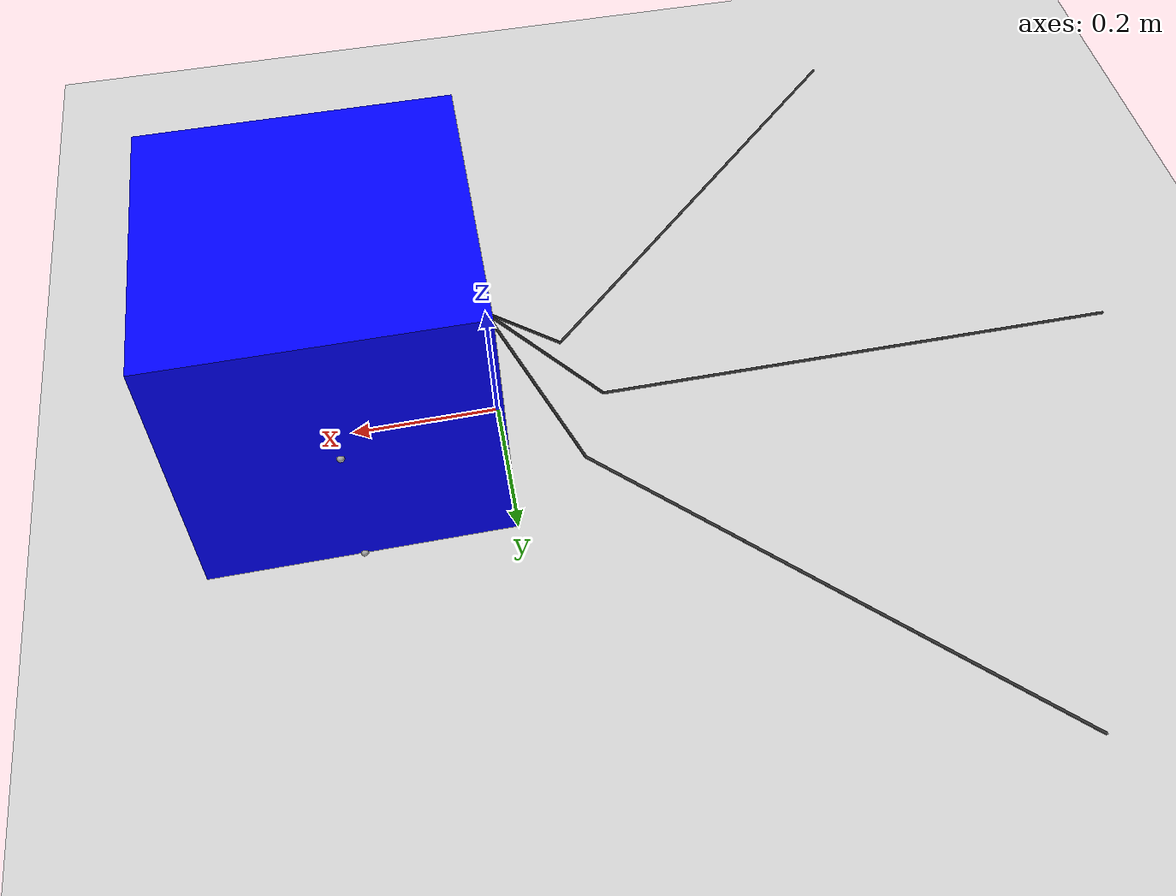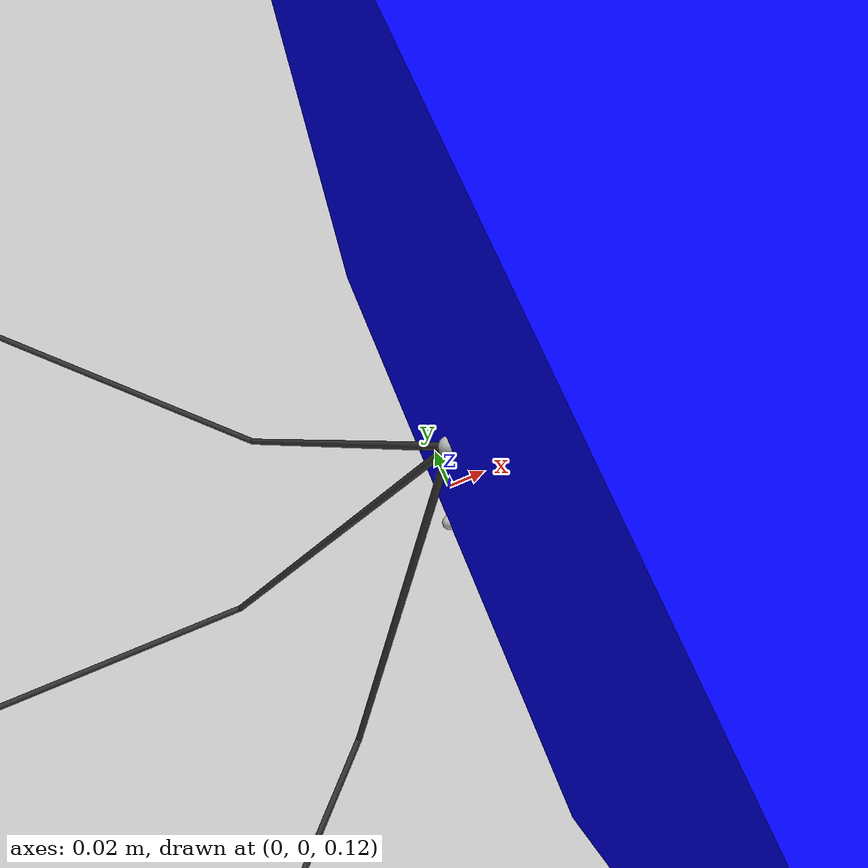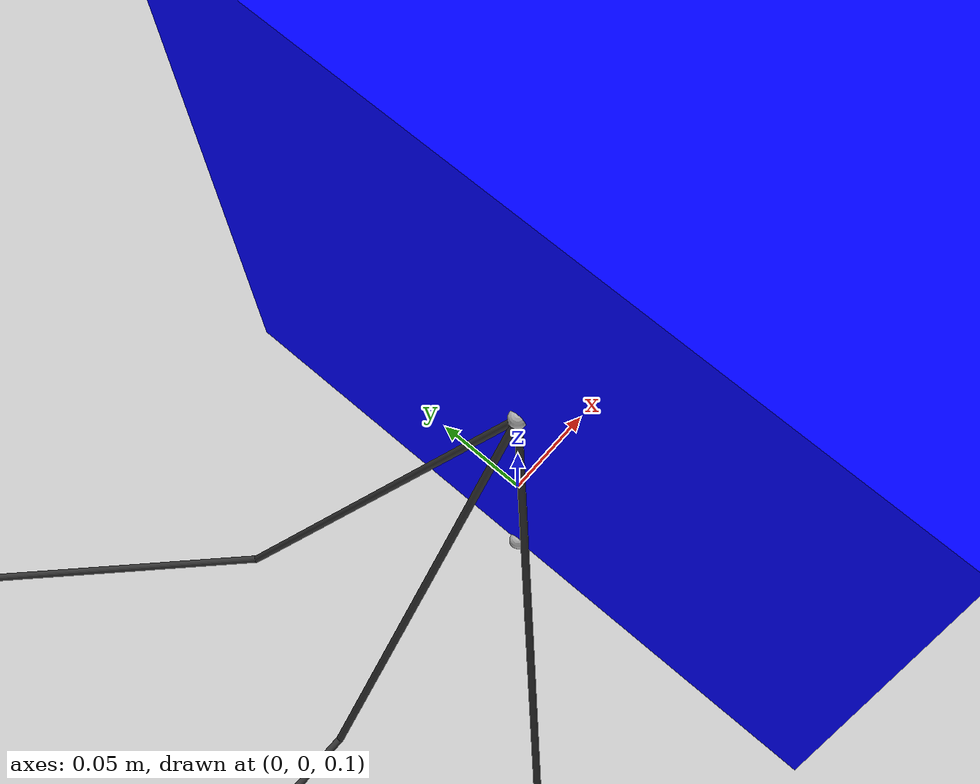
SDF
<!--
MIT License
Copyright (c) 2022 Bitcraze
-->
<sdf version="1.6">
 <world name="crazyflie_world">
  <physics name="1ms" type="ignored">
   <max_step_size>0.0005</max_step_size>
   <real_time_factor>1.0</real_time_factor>
  </physics>
  <plugin filename="gz-sim-physics-system" name="gz::sim::systems::Physics"/>
  <plugin filename="gz-sim-user-commands-system" name="gz::sim::systems::UserCommands"/>
  <plugin filename="gz-sim-scene-broadcaster-system" name="gz::sim::systems::SceneBroadcaster"/>
  <plugin filename="gz-sim-sensors-system" name="gz::sim::systems::Sensors">
   <render_engine>ogre2</render_engine>
  </plugin>
  <light type="directional" name="sun">
   <pose>0 0 10 0 0 0</pose>
   <diffuse>0.8 0.8 0.8 1</diffuse>
   <specular>0.2 0.2 0.2 1</specular>
   <attenuation>
    <range>1000</range>
    <constant>0.9</constant>
    <linear>0.01</linear>
    <quadratic>0.001</quadratic>
   </attenuation>
   <direction>-0.5 0.1 -0.9</direction>
  </light>
  <model name="ground_plane">
   <static>true</static>
   <link name="link">
    <collision name="collision">
     <geometry><plane><normal>0 0 1</normal><size>100 100</size></plane></geometry>
    </collision>
    <visual name="visual">
     <geometry><plane><normal>0 0 1</normal><size>100 100</size></plane></geometry>
     <material>
      <ambient>0.8 0.8 0.8 1</ambient>
      <diffuse>0.8 0.8 0.8 1</diffuse>
      <specular>0.8 0.8 0.8 1</specular>
     </material>
    </visual>
   </link>
  </model>
  <include><uri>model://load_large</uri><name>the_load</name><pose>0.2 0 0 0 0 0</pose></include>
  <include><uri>model://segment_middle</uri><name>segment_4</name><pose>-0.075 0 0.1 0 -0.927 0</pose></include>
  <joint name="cable_1_to_load" type="ball">
   <pose relative_to="segment_4::segment_end">0 0 0 0 0 0</pose>
   <parent>the_load::x_middle_hook</parent>
   <child>segment_4::segment_end</child>
   <axis><xyz>0 1 0</xyz></axis>
  </joint>
  <include><uri>model://segment_middle</uri><name>segment_3</name><pose>-0.275 0 0 0 0 0</pose></include>
  <joint name="segment_3_to_4" type="ball">
   <pose relative_to="segment_3::segment_end">0 0 0 0 0 0</pose>
   <parent>segment_4::segment_start</parent>
   <child>segment_3::segment_end</child>
   <axis><xyz>0 1 0</xyz></axis>
  </joint>
  <include><uri>model://segment_middle</uri><name>segment_2</name><pose>-0.525 0 0 0 0 0</pose></include>
  <joint name="segment_2_to_3" type="ball">
   <pose relative_to="segment_2::segment_end">0 0 0 0 0 0</pose>
   <parent>segment_3::segment_start</parent>
   <child>segment_2::segment_end</child>
   <axis><xyz>0 1 0</xyz></axis>
  </joint>
  <include><uri>model://segment_middle</uri><name>segment_1</name><pose>-0.775 0 0 0 0 0</pose></include>
  <joint name="segment_1_to_2" type="ball">
   <pose relative_to="segment_1::segment_end">0 0 0 0 0 0</pose>
   <parent>segment_2::segment_start</parent>
   <child>segment_1::segment_end</child>
   <axis><xyz>0 1 0</xyz></axis>
  </joint>
  <joint name="drone_to_cable_01" type="ball">
   <pose relative_to="crazyflie_01::hook_link">0 0 0 0 0 0</pose>
   <parent>segment_1::segment_start</parent>
   <child>crazyflie_01::hook_link</child>
   <axis><xyz>0 1 0</xyz></axis>
  </joint>
  <include>
   <uri>model://segment_middle</uri>
   <name>segment2_4</name>
   <pose>-0.053 0.053 0.1 0 -0.927 -0.785</pose>
  </include>
  <joint name="cable_2_to_load" type="ball">
   <pose relative_to="segment2_4::segment_end">0 0 0 0 0 0</pose>
   <parent>the_load::y_middle_hook</parent>
   <child>segment2_4::segment_end</child>
   <axis><xyz>0 1 0</xyz></axis>
  </joint>
  <include>
   <uri>model://segment_middle</uri>
   <name>segment2_3</name>
   <pose>-0.1945 0.1945 0 0 0 -0.785</pose>
  </include>
  <joint name="segment2_3_to_4" type="ball">
   <pose relative_to="segment2_3::segment_end">0 0 0 0 0 0</pose>
   <parent>segment2_4::segment_start</parent>
   <child>segment2_3::segment_end</child>
   <axis><xyz>0 1 0</xyz></axis>
  </joint>
  <include>
   <uri>model://segment_middle</uri>
   <name>segment2_2</name>
   <pose>-0.3715 0.3715 0 0 0 -0.785</pose>
  </include>
  <joint name="segment2_2_to_3" type="ball">
   <pose relative_to="segment2_2::segment_end">0 0 0 0 0 0</pose>
   <parent>segment2_3::segment_start</parent>
   <child>segment2_2::segment_end</child>
   <axis><xyz>0 1 0</xyz></axis>
  </joint>
  <include>
   <uri>model://segment_middle</uri>
   <name>segment2_1</name>
   <pose>-0.5485 0.5485 0 0 0 -0.785</pose>
  </include>
  <joint name="segment2_1_to_2" type="ball">
   <pose relative_to="segment2_1::segment_end">0 0 0 0 0 0</pose>
   <parent>segment2_2::segment_start</parent>
   <child>segment2_1::segment_end</child>
   <axis><xyz>0 1 0</xyz></axis>
  </joint>
  <joint name="drone2_to_cable_01" type="ball">
   <pose relative_to="crazyflie_02::hook_link">0 0 0 0 0 0</pose>
   <parent>segment2_1::segment_start</parent>
   <child>crazyflie_02::hook_link</child>
   <axis><xyz>0 1 0</xyz></axis>
  </joint>
  <include>
   <uri>model://segment_middle</uri>
   <name>segment3_4</name>
   <pose>-0.053 -0.053 0.1 0 -0.927 0.785</pose>
  </include>
  <joint name="cable_3_to_load" type="ball">
   <pose relative_to="segment3_4::segment_end">0 0 0 0 0 0</pose>
   <parent>the_load::y_middle_hook</parent>
   <child>segment3_4::segment_end</child>
   <axis><xyz>0 1 0</xyz></axis>
  </joint>
  <include>
   <uri>model://segment_middle</uri>
   <name>segment3_3</name>
   <pose>-0.1945 -0.1945 0 0 0 0.785</pose>
  </include>
  <joint name="segment3_3_to_4" type="ball">
   <pose relative_to="segment3_3::segment_end">0 0 0 0 0 0</pose>
   <parent>segment3_4::segment_start</parent>
   <child>segment3_3::segment_end</child>
   <axis><xyz>0 1 0</xyz></axis>
  </joint>
  <include>
   <uri>model://segment_middle</uri>
   <name>segment3_2</name>
   <pose>-0.3715 -0.3715 0 0 0 0.785</pose>
  </include>
  <joint name="segment3_2_to_3" type="ball">
   <pose relative_to="segment3_2::segment_end">0 0 0 0 0 0</pose>
   <parent>segment3_3::segment_start</parent>
   <child>segment3_2::segment_end</child>
   <axis><xyz>0 1 0</xyz></axis>
  </joint>
  <include>
   <uri>model://segment_middle</uri>
   <name>segment3_1</name>
   <pose>-0.5485 -0.5485 0 0 0 0.785</pose>
  </include>
  <joint name="segment3_1_to_2" type="ball">
   <pose relative_to="segment3_1::segment_end">0 0 0 0 0 0</pose>
   <parent>segment3_2::segment_start</parent>
   <child>segment3_1::segment_end</child>
   <axis><xyz>0 1 0</xyz></axis>
  </joint>
  <joint name="drone3_to_cable_01" type="ball">
   <pose relative_to="crazyflie_03::hook_link">0 0 0 0 0 0</pose>
   <parent>segment3_1::segment_start</parent>
   <child>crazyflie_03::hook_link</child>
   <axis><xyz>0 1 0</xyz></axis>
  </joint>
 </world>
</sdf>

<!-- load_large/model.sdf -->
<sdf version="1.8">
<model name="load_large">
  <link name="box_body">
    <pose>0 0 0.2 0 0 0</pose>
      <inertial> <!--inertial properties of the link mass, inertia matix-->
        <mass>0.015</mass>
        <inertia>
          <ixx>0.000399</ixx>
          <ixy>0</ixy>
          <ixz>0</ixz>
          <iyy>0.000399</iyy>
          <iyz>0</iyz>
          <izz>0.000399</izz>
        </inertia>
      </inertial>
      <visual name='visual'>
        <geometry>
          <box>
            <size>0.4 0.4 0.4</size>
          </box>
        </geometry>
          <!--let's add color to our link-->
          <material>
            <ambient>0.0 0.0 1.0 1</ambient>
            <diffuse>0.0 0.0 1.0 1</diffuse>
            <specular>0.0 0.0 1.0 1</specular>
          </material>
      </visual>
      <collision name='collision'>
        <geometry>
          <box>
            <size>0.4 0.4 0.4</size>
          </box>
        </geometry>
        <surface>
          <friction>
            <ode>
              <mu> 0.3 </mu>
            </ode>
          </friction>
        </surface>
      </collision>
    </link>
  <link name="x_hook">
    <pose>-0.2 0 0 0 0 0</pose>
    <inertial>
      <mass>0.00001</mass>
        <inertia>
          <ixx>1e-9</ixx>
          <ixy>0</ixy>
          <ixz>0</ixz>
          <iyy>1e-9</iyy>
          <iyz>0</iyz>
          <izz>1e-9</izz>
        </inertia>
    </inertial>
    <visual name="hook_visual"><geometry><sphere><radius>0.005</radius></sphere></geometry></visual>
    <collision name="hook_collision"><geometry><sphere><radius>0.005</radius></sphere></geometry></collision>
  </link>
  <joint name="box_to_hook_x_joint" type="fixed">
    <parent>box_body</parent>
    <child>x_hook</child>
  </joint>

  <link name="x_middle_hook">
    <pose>-0.2 0 0.2 0 0 0</pose>
    <inertial>
      <mass>0.00001</mass>
        <inertia>
          <ixx>1e-9</ixx>
          <ixy>0</ixy>
          <ixz>0</ixz>
          <iyy>1e-9</iyy>
          <iyz>0</iyz>
          <izz>1e-9</izz>
        </inertia>
    </inertial>
    <visual name="hook_visual"><geometry><sphere><radius>0.005</radius></sphere></geometry></visual>
    <collision name="hook_collision"><geometry><sphere><radius>0.005</radius></sphere></geometry></collision>
  </link>
  <joint name="box_to_middle_hook_x_joint" type="fixed">
    <parent>box_body</parent>
    <child>x_middle_hook</child>
  </joint>

  <link name="x_middle_detacheable_hook">
    <pose>-0.2 0 0.2 0 0 0</pose>
    <inertial>
      <mass>0.00001</mass>
        <inertia>
          <ixx>1e-9</ixx>
          <ixy>0</ixy>
          <ixz>0</ixz>
          <iyy>1e-9</iyy>
          <iyz>0</iyz>
          <izz>1e-9</izz>
        </inertia>
    </inertial>
    <visual name="hook_visual"><geometry><sphere><radius>0.005</radius></sphere></geometry></visual>
    <collision name="hook_collision"><geometry><sphere><radius>0.005</radius></sphere></geometry></collision>
  </link>
  <plugin filename="gz-sim-detachable-joint-system" name="gz::sim::systems::DetachableJoint">
       <parent_link>box_body</parent_link>
       <child_model>__model__</child_model>
       <joint_name>detached_joint </joint_name>
       <child_link>x_middle_detacheable_hook</child_link>
       <detach_topic>/load/detach</detach_topic>
  </plugin>

  <link name="y_hook">
    <pose>0 0.2 0 0 0 0</pose>
    <inertial>
      <mass>0.00001</mass>
        <inertia>
          <ixx>1e-9</ixx>
          <ixy>0</ixy>
          <ixz>0</ixz>
          <iyy>1e-9</iyy>
          <iyz>0</iyz>
          <izz>1e-9</izz>
        </inertia>
    </inertial>
    <visual name="hook_visual"><geometry><sphere><radius>0.005</radius></sphere></geometry></visual>
    <collision name="hook_collision"><geometry><sphere><radius>0.005</radius></sphere></geometry></collision>
  </link>
  <joint name="box_to_hook_y_joint" type="fixed">
    <parent>box_body</parent>
    <child>y_hook</child>
  </joint>

  <link name="y_middle_hook">
    <pose>0 0.2 0.2 0 0 0</pose>
    <inertial>
      <mass>0.00001</mass>
        <inertia>
          <ixx>1e-9</ixx>
          <ixy>0</ixy>
          <ixz>0</ixz>
          <iyy>1e-9</iyy>
          <iyz>0</iyz>
          <izz>1e-9</izz>
        </inertia>
    </inertial>
    <visual name="hook_visual"><geometry><sphere><radius>0.005</radius></sphere></geometry></visual>
    <collision name="hook_collision"><geometry><sphere><radius>0.005</radius></sphere></geometry></collision>
  </link>
  <joint name="box_to_middle_hook_y_joint" type="fixed">
    <parent>box_body</parent>
    <child>y_middle_hook</child>
  </joint>

  <plugin
      filename="gz-sim-odometry-publisher-system"
      name="gz::sim::systems::OdometryPublisher">
      <odom_frame>odom</odom_frame>
      <dimensions>3</dimensions>
    </plugin>
</model>
</sdf>

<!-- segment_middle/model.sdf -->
<sdf version="1.8">
  <model name="segment">
    <link name="segment_link">
      <inertial>
        <mass>0.0005</mass>
        <pose>0 0 0 0 1.5708 0</pose>
        <inertia>
            <ixx>5e-8</ixx>
            <iyy>5e-8</iyy>
            <izz>5e-8</izz>
        </inertia>
      </inertial>
      <visual name="segment_visual">
        <pose>0 0 0 0 1.5708 0</pose>
        <geometry>
          <cylinder>
            <radius>0.002</radius>
            <length>0.25</length> </cylinder>
        </geometry>
        <material>
          <ambient>0.2 0.2 0.2 1</ambient>
          <diffuse>0.2 0.2 0.2 1</diffuse>
          <specular>0.0 0.0 0.0 1</specular>
          <emissive>0.0 0.0 0.0 1</emissive>
        </material>
      </visual>
    </link>
    <link name="segment_start">
        <pose>-0.125 0 0 0 0 0</pose>
        <inertial>
          <mass>1e-9</mass>
          <inertia>
            <ixx>1e-9</ixx>
            <iyy>1e-9</iyy>
            <izz>1e-9</izz>
        </inertia>
        </inertial>
        <visual name="start_visual"><geometry><sphere><radius>0.001</radius></sphere></geometry></visual>
        <collision name="start_collision"><geometry><sphere><radius>0.001</radius></sphere></geometry></collision>
    </link>
    <joint name="start_joint" type="fixed">
        <parent>segment_link</parent>
        <child>segment_start</child>
    </joint>
    <link name="segment_end">
        <pose>0.125 0 0 0 0 0</pose>
        <inertial>
          <mass>1e-9</mass>
          <inertia>
            <ixx>1e-9</ixx>
            <iyy>1e-9</iyy>
            <izz>1e-9</izz>
        </inertia>
        </inertial>
        <visual name="end_visual"><geometry><sphere><radius>0.001</radius></sphere></geometry></visual>
        <collision name="end_collision"><geometry><sphere><radius>0.001</radius></sphere></geometry></collision>
    </link>
    <joint name="end_joint" type="fixed">
        <parent>segment_end</parent>
        <child>segment_link</child>
    </joint>
  </model>
</sdf>
